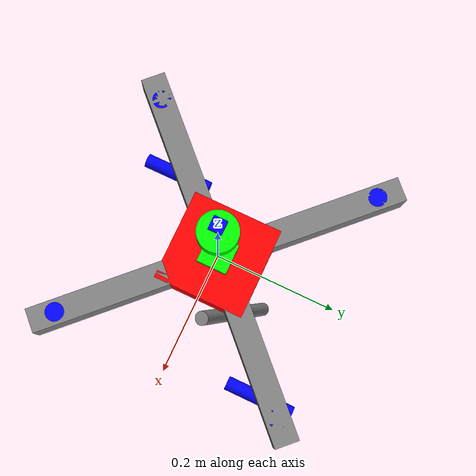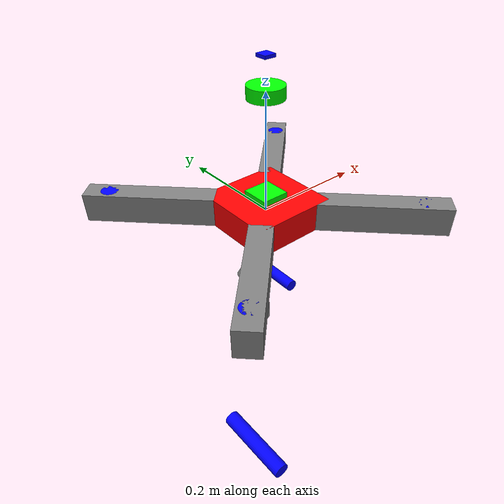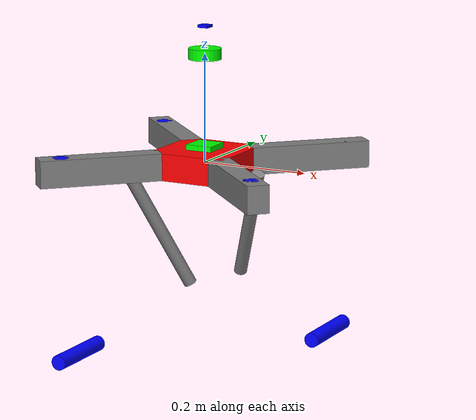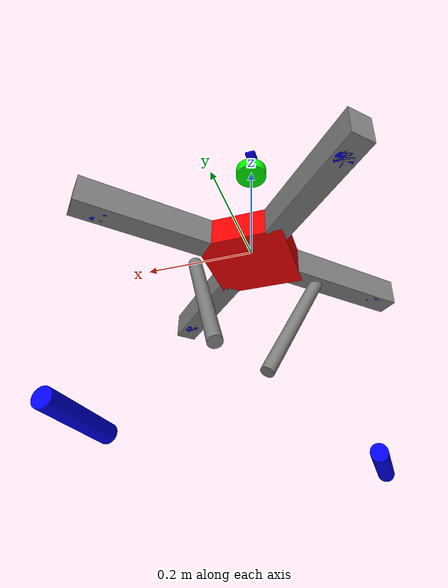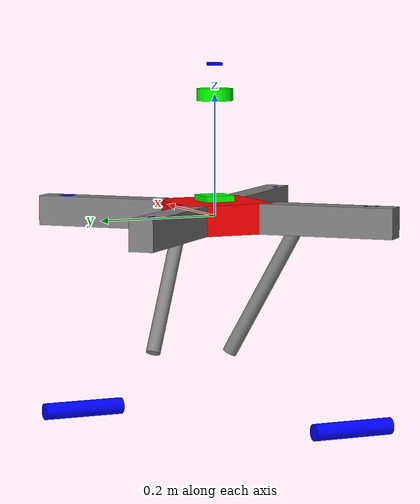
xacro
<?xml version="1.0"?>
<robot name="Udaan">

<!-- ===== Colors ===== -->
    <material name="green">
        <color rgba="0 1 0 1" />
    </material>

    <material name="blue">
        <color rgba="0 0 1 1" />
    </material>

    <material name="red">
        <color rgba="1 0 0 1" />
    </material>

    <material name="grey">
        <color rgba="0.5 0.5 0.5 1" />
    </material>

<!-- ===== Base Link ===== -->

    <link name="base_link">
        <visual>
            <geometry>
                <box size="0.15 0.15 0.05"/>
            </geometry>
            <origin xyz="0 0 0" rpy="0 0 0"/>
            <material name="red"/>
        </visual>
        <inertial>
            <mass value="0.750" />
            <origin xyz="0 0 0" rpy="0 0 0"/>
            <inertia ixx="0.0028125" ixy="0.0" ixz="0.0"
                     iyy="0.0028125" iyz="0.0" izz="0.0015625"/>
        </inertial>
        <collision>
            <geometry>
                <box size="0.15 0.15 0.05" />
            </geometry>
            <origin xyz="0 0 0" rpy="0 0 0"/>
        </collision>
    </link>

<!-- ===== Quad Arms and Motors ===== -->

    <!-- Top Right Arm -->
    <link name="top_right_arm">
        <visual>
            <geometry>
                <box size="0.225 0.04 0.05"/>
            </geometry>
            <origin xyz="0.075 0.075 0" rpy="0 0 0.785"/>
            <material name="grey"/>
        </visual>
        <inertial>
            <mass value="0.1"/>
            <origin xyz="0.075 0.075 0" rpy="0 0 0.785"/>
            <inertia ixx="3.42e-05" ixy="0.0" ixz="0.0"
                     iyy="4.43e-04" iyz="0.0" izz="4.35e-04"/>
            </inertial>
            <collision>
                <geometry>
                    <box size="0.225 0.04 0.05"/>
            </geometry>
            <origin xyz="0.075 0.075 0" rpy="0 0 0.785"/>
        </collision>
    </link>

    <joint name="base_top_right_arm_joint" type="fixed">
        <parent link="base_link"/>
        <child link="top_right_arm"/>
        <origin xyz="0.065 0.065 0" rpy="0 0 0"/>
    </joint>

    <!-- Top Right Motor -->
    <link name="motor_top_right_arm">
        <visual>
            <geometry>
                <cylinder radius="0.015" length="0.05"/>
            </geometry>
            <origin xyz="0 0 0" rpy="0 0 0"/>
            <material name="blue"/>
        </visual>
        <inertial>
            <mass value="0.05"/>
            <origin xyz="0 0 0" rpy="0 0 0"/>
            <inertia ixx="1.32e-05" ixy="0.0" ixz="0.0"
                     iyy="1.32e-05" iyz="0.0" izz="5.63e-06"/>
        </inertial>
        <collision>
            <geometry>
                <cylinder radius="0.015" length="0.05"/>
            </geometry>
            <origin xyz="0 0 0" rpy="0 0 0"/>
        </collision>
    </link>

    <joint name="top_right_arm_motor_joint" type="continuous">
        <parent link="top_right_arm"/>
        <child link="motor_top_right_arm"/>
        <origin xyz="0.125 0.125 0" rpy="0 0 0"/>
        <axis xyz="0 0 -1"/>
        <limit effort="1000" velocity="1000"/>
        <dynamics damping="0.1" friction="0.1"/>
    </joint>

    <!-- Top Left Arm -->
    <link name="top_left_arm">
        <visual>
            <geometry>
                <box size="0.225 0.04 0.05"/>
            </geometry>
            <origin xyz="-0.075 0.075 0" rpy="0 0 -0.785"/>
            <material name="grey"/>
        </visual>
        <inertial>
            <mass value="0.1"/>
            <origin xyz="-0.075 0.075 0" rpy="0 0 -0.785"/>
            <inertia ixx="3.42e-05" ixy="0.0" ixz="0.0"
                     iyy="4.43e-04" iyz="0.0" izz="4.35e-04"/>
            </inertial>
            <collision>
                <geometry>
                    <box size="0.225 0.04 0.05"/>
            </geometry>
            <origin xyz="-0.075 0.075 0" rpy="0 0 -0.785"/>
        </collision>
    </link>

    <joint name="base_top_left_arm_joint" type="fixed">
        <parent link="base_link"/>
        <child link="top_left_arm"/>
        <origin xyz="-0.065 0.065 0" rpy="0 0 0"/>
    </joint>

    <!-- Top Left Motor -->
    <link name="motor_top_left_arm">
        <visual>
            <geometry>
                <cylinder radius="0.015" length="0.05"/>
            </geometry>
            <origin xyz="0 0 0" rpy="0 0 0"/>
            <material name="blue"/>
        </visual>
        <inertial>
            <mass value="0.05"/>
            <origin xyz="0 0 0" rpy="0 0 0"/>
            <inertia ixx="1.32e-05" ixy="0.0" ixz="0.0"
                     iyy="1.32e-05" iyz="0.0" izz="5.63e-06"/>
        </inertial>
        <collision>
            <geometry>
                <cylinder radius="0.015" length="0.05"/>
            </geometry>
            <origin xyz="0 0 0" rpy="0 0 0"/>
        </collision>
    </link>

    <joint name="top_left_arm_motor_joint" type="continuous">
        <parent link="top_left_arm"/>
        <child link="motor_top_left_arm"/>
        <origin xyz="-0.125 0.125 0" rpy="0 0 0"/>
        <axis xyz="0 0 1"/>
        <limit effort="1000" velocity="1000"/>
        <dynamics damping="0.1" friction="0.1"/>
    </joint>

    <!-- Bottom Right Arm -->
    <link name="bottom_right_arm">
        <visual>
            <geometry>
                <box size="0.225 0.04 0.05"/>
            </geometry>
            <origin xyz="0.075 -0.075 0" rpy="0 0 -0.785"/>
            <material name="grey"/>
        </visual>
        <inertial>
            <mass value="0.1"/>
            <origin xyz="0.075 -0.075 0" rpy="0 0 -0.785"/>
            <inertia ixx="3.42e-05" ixy="0.0" ixz="0.0"
                     iyy="4.43e-04" iyz="0.0" izz="4.35e-04"/>
            </inertial>
            <collision>
                <geometry>
                    <box size="0.225 0.04 0.05"/>
            </geometry>
            <origin xyz="0.075 -0.075 0" rpy="0 0 -0.785"/>
        </collision>
    </link>

    <joint name="base_bottom_right_arm_joint" type="fixed">
        <parent link="base_link"/>
        <child link="bottom_right_arm"/>
        <origin xyz="0.065 -0.065 0" rpy="0 0 0"/>
    </joint>

    <!-- Bottom Right Motor -->
    <link name="motor_bottom_right_arm">
        <visual>
            <geometry>
                <cylinder radius="0.015" length="0.05"/>
            </geometry>
            <origin xyz="0 0 0" rpy="0 0 0"/>
            <material name="blue"/>
        </visual>
        <inertial>
            <mass value="0.05"/>
            <origin xyz="0 0 0" rpy="0 0 0"/>
            <inertia ixx="1.32e-05" ixy="0.0" ixz="0.0"
                     iyy="1.32e-05" iyz="0.0" izz="5.63e-06"/>
        </inertial>
        <collision>
            <geometry>
                <cylinder radius="0.015" length="0.05"/>
            </geometry>
            <origin xyz="0 0 0" rpy="0 0 0"/>
        </collision>
    </link>

    <joint name="bottom_right_arm_motor_joint" type="continuous">
        <parent link="bottom_right_arm"/>
        <child link="motor_bottom_right_arm"/>
        <origin xyz="0.125 -0.125 0" rpy="0 0 0"/>
        <axis xyz="0 0 1"/>
        <limit effort="1000" velocity="1000"/>
        <dynamics damping="0.1" friction="0.1"/>
    </joint>

    <!-- Bottom Left Arm -->
    <link name="bottom_left_arm">
        <visual>
            <geometry>
                <box size="0.225 0.04 0.05"/>
            </geometry>
            <origin xyz="-0.075 -0.075 0" rpy="0 0 -2.35"/>
            <material name="grey"/>
        </visual>
        <inertial>
            <mass value="0.1"/>
            <origin xyz="-0.075 -0.075 0" rpy="0 0 -2.35"/>
            <inertia ixx="3.42e-05" ixy="0.0" ixz="0.0"
                     iyy="4.43e-04" iyz="0.0" izz="4.35e-04"/>
            </inertial>
            <collision>
                <geometry>
                    <box size="0.225 0.04 0.05"/>
            </geometry>
            <origin xyz="-0.075 -0.075 0" rpy="0 0 -2.35"/>
        </collision>
    </link>

    <joint name="base_bottom_left_arm_joint" type="fixed">
        <parent link="base_link"/>
        <child link="bottom_left_arm"/>
        <origin xyz="-0.065 -0.065 0" rpy="0 0 0"/>
    </joint>

    <!-- Bottom Left Motor -->
    <link name="motor_bottom_left_arm">
        <visual>
            <geometry>
                <cylinder radius="0.015" length="0.05"/>
            </geometry>
            <origin xyz="0 0 0" rpy="0 0 0"/>
            <material name="blue"/>
        </visual>
        <inertial>
            <mass value="0.05"/>
            <origin xyz="0 0 0" rpy="0 0 0"/>
            <inertia ixx="1.32e-05" ixy="0.0" ixz="0.0"
                     iyy="1.32e-05" iyz="0.0" izz="5.63e-06"/>
        </inertial>
        <collision>
            <geometry>
                <cylinder radius="0.015" length="0.05"/>
            </geometry>
            <origin xyz="0 0 0" rpy="0 0 0"/>
        </collision>
    </link>

    <joint name="bottom_left_arm_motor_joint" type="continuous">
        <parent link="bottom_left_arm"/>
        <child link="motor_bottom_left_arm"/>
        <origin xyz="-0.125 -0.125 0" rpy="0 0 0"/>
        <axis xyz="0 0 -1"/>
        <limit effort="1000" velocity="1000"/>
        <dynamics damping="0.1" friction="0.1"/>
    </joint>

<!-- ===== Landing Gears ===== -->

    <!-- Diagonal Leg 1 -->
    <link name="landing_gear_leg1">
        <visual>
            <geometry>
                <cylinder radius="0.012" length="0.24"/>
            </geometry>
            <!-- Angled forward-right, down from base -->
            <origin xyz="0.06 0.06 -0.12" rpy="0.5 0 0.75"/>
            <material name="grey"/>
        </visual>
        <collision>
            <geometry>
                <cylinder radius="0.012" length="0.24"/>
            </geometry>
            <origin xyz="0.06 0.06 -0.12" rpy="0.5 0 0.75"/>
        </collision>
        <inertial>
            <mass value="0.04"/>
            <origin xyz="0.06 0.06 -0.12" rpy="0.5 0 0.75"/>
            <inertia ixx="1e-6" ixy="0" ixz="0" iyy="1e-6" iyz="0" izz="1e-6"/>
        </inertial>
    </link>
    <joint name="joint_landing_gear_leg1" type="fixed">
        <parent link="base_link"/>
        <child link="landing_gear_leg1"/>
        <origin xyz="0 0 0" rpy="0 0 0"/>
    </joint>

    <!-- Diagonal Leg 2 -->
    <link name="landing_gear_leg2">
        <visual>
            <geometry>
                <cylinder radius="0.012" length="0.24"/>
            </geometry>
            <!-- Angled backward-left, down from base -->
            <origin xyz="-0.06 -0.06 -0.12" rpy="0.5 0 -0.75"/>
            <material name="grey"/>
        </visual>
        <collision>
            <geometry>
                <cylinder radius="0.012" length="0.24"/>
            </geometry>
            <origin xyz="-0.06 -0.06 -0.12" rpy="0.5 0 -0.75"/>
        </collision>
        <inertial>
            <mass value="0.04"/>
            <origin xyz="-0.06 -0.06 -0.12" rpy="0.5 0 -0.75"/>
            <inertia ixx="1e-6" ixy="0" ixz="0" iyy="1e-6" iyz="0" izz="1e-6"/>
        </inertial>
    </link>
    <joint name="joint_landing_gear_leg2" type="fixed">
        <parent link="base_link"/>
        <child link="landing_gear_leg2"/>
        <origin xyz="0 0 0" rpy="0 0 0"/>
    </joint>

    <!-- Horizontal Foot 1 (attached to end of leg1) -->
    <link name="landing_gear_foot1">
        <visual>
            <geometry>
                <cylinder radius="0.014" length="0.14"/>
            </geometry>
            <!-- At the end of leg1, parallel to ground (adjust xyz as needed) -->
            <origin xyz="0.17 0.17 -0.22" rpy="1.5708 0 0"/>
            <material name="blue"/>
        </visual>
        <collision>
            <geometry>
                <cylinder radius="0.014" length="0.14"/>
            </geometry>
            <origin xyz="0.17 0.17 -0.22" rpy="1.5708 0 0"/>
        </collision>
        <inertial>
            <mass value="0.02"/>
            <origin xyz="0.17 0.17 -0.22" rpy="1.5708 0 0"/>
            <inertia ixx="1e-6" ixy="0" ixz="0" iyy="1e-6" iyz="0" izz="1e-6"/>
        </inertial>
    </link>
    <joint name="joint_landing_gear_foot1" type="fixed">
        <parent link="landing_gear_leg1"/>
        <child link="landing_gear_foot1"/>
        <origin xyz="0 0 -0.12" rpy="0 0 0"/>
    </joint>

    <!-- Horizontal Foot 2 (attached to end of leg2) -->
    <link name="landing_gear_foot2">
        <visual>
            <geometry>
                <cylinder radius="0.014" length="0.14"/>
            </geometry>
            <!-- At the end of leg2, parallel to ground (adjust xyz as needed) -->
            <origin xyz="-0.17 -0.17 -0.22" rpy="1.5708 0 0"/>
            <material name="blue"/>
        </visual>
        <collision>
            <geometry>
                <cylinder radius="0.014" length="0.14"/>
            </geometry>
            <origin xyz="-0.17 -0.17 -0.22" rpy="1.5708 0 0"/>
        </collision>
        <inertial>
            <mass value="0.02"/>
            <origin xyz="-0.17 -0.17 -0.22" rpy="1.5708 0 0"/>
            <inertia ixx="1e-6" ixy="0" ixz="0" iyy="1e-6" iyz="0" izz="1e-6"/>
        </inertial>
    </link>
    <joint name="joint_landing_gear_foot2" type="fixed">
        <parent link="landing_gear_leg2"/>
        <child link="landing_gear_foot2"/>
        <origin xyz="0 0 -0.12" rpy="0 0 0"/>
    </joint>

<!-- ===== Sensors ===== -->

    <!-- IMU Sensor -->
    <link name="imu_link">
        <visual>
            <geometry>
                <box size="0.05 0.05 0.01"/>
            </geometry>
            <origin xyz="0 0 0" rpy="0 0 0"/>
            <material name="green"/>
        </visual>
        <inertial>
            <mass value="0.01"/>
            <origin xyz="0 0 0" rpy="0 0 0"/>
            <inertia ixx="2.17e-06" ixy="0.0" ixz="0.0"
                     iyy="2.17e-06" iyz="0.0" izz="4.17e-06"/>
        </inertial>
        <collision>
            <geometry>
                <box size="0.05 0.05 0.01"/>
            </geometry>
            <origin xyz="0 0 0" rpy="0 0 0"/>
        </collision>
    </link>

    <joint name="base_imu_joint" type="fixed">
        <parent link="base_link"/>
        <child link="imu_link"/>
        <origin xyz="0 0 0.03" rpy="0 0 0"/>
    </joint>

    <!-- LiDAR Sensor -->
    <link name="lidar_link">
        <visual>
            <geometry>
                <cylinder radius="0.03" length="0.02"/>
            </geometry>
            <origin xyz="0 0 0" rpy="0 0 0"/>
            <material name="green"/>
        </visual>
        <inertial>
            <mass value="0.2"/>
            <origin xyz="0 0 0" rpy="0 0 0"/>
            <inertia ixx="1e-5" ixy="0" ixz="0" iyy="1e-5" iyz="0" izz="1e-5"/>
        </inertial>
        <collision>
            <geometry>
                <cylinder radius="0.03" length="0.02"/>
            </geometry>
            <origin xyz="0 0 0" rpy="0 0 0"/>
        </collision>
    </link>

    <joint name="lidar_joint" type="fixed">
        <parent link="base_link"/>
        <child link="lidar_link"/>
        <origin xyz="0 0 0.2" rpy="0 0 0"/>
    </joint>

    <!-- Barometer Sensor -->
    <link name="barometer_link">
        <visual>
            <geometry>
                <box size="0.02 0.02 0.005"/>
            </geometry>
            <origin xyz="0 0 0" rpy="0 0 0"/>
            <material name="blue"/>
        </visual>
        <inertial>
            <mass value="0.05"/>
            <origin xyz="0 0 0" rpy="0 0 0"/>
            <inertia ixx="1e-5" ixy="0" ixz="0" iyy="1e-5" iyz="0" izz="1e-5"/>
        </inertial>
        <collision>
            <geometry>
                <box size="0.02 0.02 0.005"/>
            </geometry>
            <origin xyz="0 0 0" rpy="0 0 0"/>
        </collision>
    </link>

    <joint name="barometer_joint" type="fixed">
        <parent link="base_link"/>
        <child link="barometer_link"/>
        <origin xyz="0 0 0.25" rpy="0 0 0"/>
    </joint>

<!-- ===== Gazebo Materials ===== -->

    <gazebo reference="base_link">
        <material>Gazebo/Red</material>
    </gazebo>

    <gazebo reference="imu_link">
        <material>Gazebo/Green</material>
    </gazebo>

    <gazebo reference="lidar_link">
        <material>Gazebo/Green</material>
    </gazebo>

    <gazebo reference="barometer_link">
        <material>Gazebo/Blue</material>
    </gazebo>

<!-- ===== Plugins ===== -->

    <!-- IMU Sensor-->
    <gazebo reference="imu_link">
        <sensor type="imu" name="imu_sensor">
            <always_on>true</always_on>
            <update_rate>100.0</update_rate>
            <visualize>true</visualize>
            <imu>
                <angular_velocity>
                    <noise type="gaussian">
                        <mean>0.0</mean>
                        <stddev>0.01</stddev>
                        <bias_mean>0.0</bias_mean>
                        <bias_stddev>0.0</bias_stddev>
                    </noise>
                </angular_velocity>
                <linear_acceleration>
                    <noise type="gaussian">
                        <mean>0.0</mean>
                        <stddev>0.1</stddev>
                        <bias_mean>0.0</bias_mean>
                        <bias_stddev>0.0</bias_stddev>
                    </noise>
                </linear_acceleration>
            </imu>
            <plugin name="imu_plugin" filename="libgazebo_ros_imu_sensor.so">
                <ros>
                    <remapping>imu/data:=/imu/data</remapping>
                </ros>
                <topicName>/imu/data</topicName>
                <frame_name>imu_link</frame_name>
            </plugin>
        </sensor>
    </gazebo>

    <!-- LiDAR Sensor -->
    <gazebo reference="lidar_link">
        <sensor name="lidar_sensor" type="ray">
            <pose>0 0 0 0 0 0</pose>
            <visualize>true</visualize>
            <update_rate>10</update_rate>
            <ray>
                <scan>
                    <horizontal>
                        <samples>360</samples>
                        <resolution>1</resolution>
                        <min_angle>-3.14</min_angle>
                        <max_angle>3.14</max_angle>
                    </horizontal>
                </scan>
                <range>
                    <min>0.1</min>
                    <max>10.0</max>
                    <resolution>0.01</resolution>
                </range>
                <noise>
                    <type>gaussian</type>
                    <mean>0.0</mean>
                    <stddev>0.01</stddev>
                </noise>
            </ray>
            <plugin name="gazebo_ros_laser_controller" filename="libgazebo_ros_ray_sensor.so">
                <ros>
                    <remapping>scan:=scan</remapping>
                </ros>
                <frame_name>lidar_link</frame_name>
                <pose>0 0 0 0 0 0</pose>
            </plugin>
        </sensor>
    </gazebo>

    <!-- Barometer Sensor -->
    <gazebo reference="barometer_link">
        <sensor name="baro_sensor" type="altimeter">
            <pose>0 0 0 0 0 0</pose>
            <update_rate>10</update_rate>
            <plugin name="baro_plugin" filename="libgazebo_ros_altimeter.so">
            <topic_name>/Barometer/data</topic_name>
            <frame_name>barometer_link</frame_name>
            </plugin>
        </sensor>
    </gazebo>

    <!-- Multicopter Control -->
    <gazebo>
        <plugin name="multicopter_base_plugin" filename="libgazebo_ros_multicopter.so">
            <ros>
                <namespace>/udaan</namespace>
                <remapping>cmd_vel:=cmd_vel</remapping>
            </ros>
            <motor_number>4</motor_number>
            <motor_speed_ref>838</motor_speed_ref>
            <motor_torque_ref>8.38</motor_torque_ref>
            <body_name>base_link</body_name>
            <imu_topic>/udaan/imu/data</imu_topic>
            <motor_velocity_slowdown_sim>10</motor_velocity_slowdown_sim>
        </plugin>
    </gazebo>

</robot>
